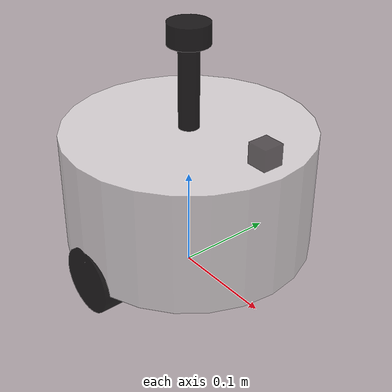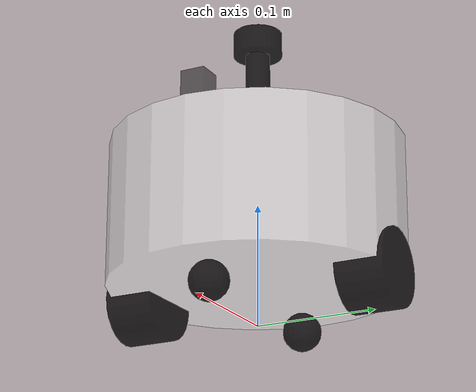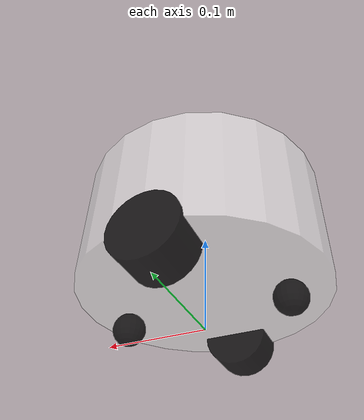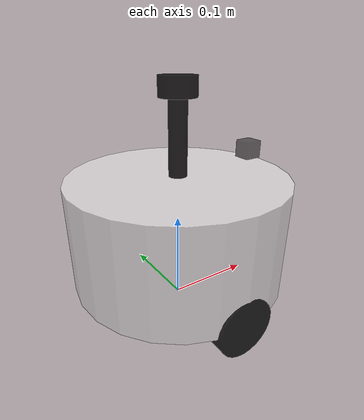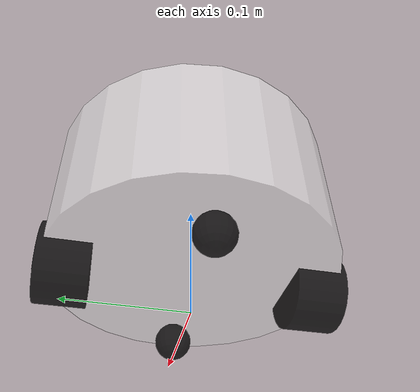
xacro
<?xml version="1.0"?>
<robot xmlns:xacro="http://www.ros.org/wiki/xacro" name="fishbot">
    <xacro:include filename="$(find learning_urdf)/urdf/fishbot/base.urdf.xacro" />
    <!-- 传感器组件 -->
    <xacro:include filename="$(find learning_urdf)/urdf/fishbot/sensor/imu.urdf.xacro" />
    <xacro:include filename="$(find learning_urdf)/urdf/fishbot/sensor/laser.urdf.xacro" />
    <xacro:include filename="$(find learning_urdf)/urdf/fishbot/sensor/camera.urdf.xacro" />
    <!-- 执行器组件 -->
    <xacro:include filename="$(find learning_urdf)/urdf/fishbot/actuator/wheel.urdf.xacro" />
    <xacro:include filename="$(find learning_urdf)/urdf/fishbot/actuator/caster.urdf.xacro" />
    <!-- Gazebo 插件 -->
    <xacro:include filename="$(find learning_urdf)/urdf/fishbot/plugins/gazebo_control_plugin.xacro" />

    <xacro:base_xacro length="0.12" radius="0.1" />
    <!-- 传感器 -->
    <xacro:imu_xacro xyz="0 0 0.02" />
    <xacro:laser_xacro xyz="0 0 0.10" />
    <xacro:camera_xacro xyz="0.10 0 0.075" />
    <!-- 执行器主动轮+从动轮 -->
    <xacro:wheel_xacro wheel_name="left" xyz="0 0.10 -0.06" />
    <xacro:wheel_xacro wheel_name="right" xyz="0 -0.10 -0.06" />
    <xacro:caster_xacro caster_name="front" xyz="0.08 0.0 -0.076" />
    <xacro:caster_xacro caster_name="back" xyz="-0.08 0.0 -0.076" />

    <xacro:gazebo_control_plugin />

</robot>

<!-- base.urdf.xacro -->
<robot xmlns:xacro="http://www.ros.org/wiki/xacro">
<xacro:include filename="$(find learning_urdf)/urdf/fishbot/common_inertia.xacro" />
    <xacro:macro name="base_xacro" params="length radius">
     <link name="base_footprint" />

        <joint name="base_joint" type="fixed">
            <parent link="base_footprint" />
            <child link="base_link" />
            <origin xyz="0.0 0.0 ${length/2.0+0.032-0.001}" rpy="0 0 0" />
        </joint>
        <link name="base_link">
            <visual>
                <origin xyz="0 0 0.0" rpy="0 0 0" />
                <geometry>
                    <cylinder length="${length}" radius="${length}" />
                </geometry>
                <material name="white">
                    <color rgba="1.0 1.0 1.0 0.5"/>
                </material>
            </visual>
            <collision>
                <origin xyz="0 0 0.0" rpy="0 0 0" />
                <geometry>
                    <cylinder length="${length}" radius="${length}" />
                </geometry>
                <material name="white">
                    <color rgba="1.0 1.0 1.0 0.5"/>
                </material>
            </collision>
             <xacro:cylinder_inertia m="1.0" r="${radius}" h="${length}"/>
        </link>
    </xacro:macro>
</robot>

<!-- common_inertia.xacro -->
<robot xmlns:xacro="http://ros.org/wiki/xacro">
    <xacro:macro name="box_inertia" params="m w h d">
        <inertial>
            <mass value="${m}" />
            <inertia ixx="${(m/12) * (h*h + d*d)}" ixy="0.0" ixz="0.0" iyy="${(m/12) * (w*w + d*d)}" iyz="0.0" izz="${(m/12) * (w*w + h*h)}" />
        </inertial>
    </xacro:macro>

    <xacro:macro name="cylinder_inertia" params="m r h">
        <inertial>
            <mass value="${m}" />
            <inertia ixx="${(m/12) * (3*r*r + h*h)}" ixy="0" ixz="0" iyy="${(m/12) * (3*r*r + h*h)}" iyz="0" izz="${(m/2) * (r*r)}" />
        </inertial>
    </xacro:macro>

<!--
      球体惯性宏
      参数：
        m : 质量 [kg]
        r : 半径 [m]
      公式（均质实心球体，质心在球心）：
        ixx = iyy = izz = 2/5 * m * r^2
      注意：球体惯性张量各向同性，因此与坐标系方向无关。
    -->
    <xacro:macro name="sphere_inertia" params="m r">
        <inertial>
            <mass value="${m}" />
            <inertia ixx="${(2/5) * m * (r*r)}" ixy="0.0" ixz="0.0" iyy="${(2/5) * m * (r*r)}" iyz="0.0" izz="${(2/5) * m * (r*r)}" />
        </inertial>
    </xacro:macro>

</robot>

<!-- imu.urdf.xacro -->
<robot xmlns:xacro="http://www.ros.org/wiki/xacro">
<xacro:include filename="$(find learning_urdf)/urdf/fishbot/common_inertia.xacro" />
    <!-- 机器人的身体部分 -->
    <xacro:macro name="imu_xacro" params="xyz">
        <!-- 机器人的IMU部件，惯性测量传感器 -->
        <link name="imu_link">
            <!-- 部件的外观描述 -->
            <visual>
                <!-- 沿着自己几何中心的偏移和旋转 -->
                <origin xyz="0.0 0.0 0.0" rpy="0.0 0.0 0.0"/>
                <!-- 几何形状 -->
                <geometry>
                    <!-- 正方体-->
                    <box size="0.02 0.02 0.02"/>
                </geometry>
                <!-- 材质颜色 -->
                <material name="black">
                    <color rgba="0.0 0.0 0.0 0.5"/>
                </material>
            </visual>
             <collision>
                <origin xyz="0 0 00" rpy="0 0 0" />
                <geometry>
                    <box size="0.02 0.02 0.02" />
                </geometry>
                <material name="black">
                    <color rgba="0 0 0 0.5" />
                </material>
            </collision>
            <xacro:box_inertia m="0.01" w="0.02" d="0.02" h="0.02"/>
        </link>
        <!-- 机器人的关节，用于组合机器人的部件 -->
        <joint name="imu_joint" type="fixed">
            <parent link="base_link"/>
            <child link="imu_link"/>
            <origin xyz="${xyz}" rpy="0.0 0.0 0.0"/>
        </joint>
    </xacro:macro>
</robot>

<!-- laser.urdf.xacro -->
<robot xmlns:xacro="http://www.ros.org/wiki/xacro">
<xacro:include filename="$(find learning_urdf)/urdf/fishbot/common_inertia.xacro" />
    <xacro:macro name="laser_xacro" params="xyz">
        <gazebo reference="laser_cylinder_link">
            <material>Gazebo/Black</material>
        </gazebo>
        <gazebo reference="laser_link">
            <material>Gazebo/Black</material>
        </gazebo>
        <!-- ============雷达支撑杆================ -->
        <link name="laser_cylinder_link">
            <visual>
                <origin xyz="0 0 0" rpy="0 0 0" />
                <geometry>
                    <cylinder length="0.10" radius="0.01" />
                </geometry>
                <material name="black">
                    <color rgba="0.0 0.0 0.0 0.8" />
                </material>
            </visual>
             <collision>
                <origin xyz="0 0 0" rpy="0 0 0" />
                <geometry>
                    <cylinder length="0.10" radius="0.01" />
                </geometry>
                <material name="black">
                    <color rgba="0.0 0.0 0.0 0.8" />
                </material>
            </collision>
            <xacro:cylinder_inertia m="0.01" r="0.01" h="0.10" />
        </link>

        <joint name="laser_cylinder_joint" type="fixed">
            <parent link="base_link" />
            <child link="laser_cylinder_link" />
            <origin xyz="${xyz}" />
        </joint>
        <!-- ============雷达================ -->
        <link name="laser_link">
            <visual>
                <origin xyz="0 0 0" rpy="0 0 0" />
                <geometry>
                    <cylinder length="0.02" radius="0.02" />
                </geometry>
                <material name="black">
                    <color rgba="0.0 0.0 0.0 0.8" />
                </material>
            </visual>
            <collision>
                <origin xyz="0 0 0" rpy="0 0 0" />
                <geometry>
                    <cylinder length="0.02" radius="0.02" />
                </geometry>
                <material name="black">
                    <color rgba="0.0 0.0 0.0 0.8" />
                </material>
            </collision>
            <xacro:cylinder_inertia m="0.03" r="0.02" h="0.02" />
        </link>

        <joint name="laser_joint" type="fixed">
            <parent link="laser_cylinder_link" />
            <child link="laser_link" />
            <origin xyz="0 0 0.05" />
        </joint>
    </xacro:macro>
</robot>

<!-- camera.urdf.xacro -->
<robot xmlns:xacro="http://www.ros.org/wiki/xacro">
<xacro:include filename="$(find learning_urdf)/urdf/fishbot/common_inertia.xacro" />
    <xacro:macro name="camera_xacro" params="xyz">
        <!-- ============相机模块================ -->
        <link name="camera_link">
            <visual>
                <origin xyz="0 0 0.0" rpy="0 0 0" />
                <geometry>
                    <box size="0.02 0.02 0.02" />
                </geometry>
                <material name="black">
                    <color rgba="0.0 0.0 0.0 0.5"/>
                </material>
            </visual>
            <collision>
                <origin xyz="0 0 0.0" rpy="0 0 0" />
                <geometry>
                    <box size="0.02 0.10 0.02" />
                </geometry>
                <material name="black">
                    <color rgba="0.0 0.0 0.0 0.5"/>
                </material>
            </collision>
            <xacro:box_inertia m="0.01" w="0.02" h="0.10" d="0.02" />
        </link>
        <joint name="camera_joint" type="fixed">
            <parent link="base_link" />
            <child link="camera_link" />
            <origin xyz="${xyz}" />
        </joint>
    </xacro:macro>

</robot>

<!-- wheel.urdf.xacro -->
<robot xmlns:xacro="http://www.ros.org/wiki/xacro">
<xacro:include filename="$(find learning_urdf)/urdf/fishbot/common_inertia.xacro" />
    <xacro:macro name="wheel_xacro" params="wheel_name xyz">
        <link name="${wheel_name}_wheel_link">
            <visual>
                <origin xyz="0 0 0" rpy="1.57079 0 0" />
                <geometry>
                    <cylinder length="0.04" radius="0.032" />
                </geometry>
                <material name="black">
                    <color rgba="0.0 0.0 0.0 0.8"/>
                </material>
            </visual>
            <collision>
                <origin xyz="0 0 0" rpy="1.57079 0 0" />
                <geometry>
                    <cylinder length="0.04" radius="0.032" />
                </geometry>
                <material name="black">
                    <color rgba="0.0 0.0 0.0 0.8"/>
                </material>
            </collision>
            <xacro:cylinder_inertia m="0.1" h="0.04" r="0.032"/>
        </link>
        <gazebo reference="${wheel_name}_wheel_link">
            <mu1 value="15.0" />
            <mu2 value="15.0" />
            <kp value="1000000000.0" />
            <kd value="1.0" />
        </gazebo>

        <joint name="${wheel_name}_wheel_joint" type="continuous">
            <parent link="base_link" />
            <child link="${wheel_name}_wheel_link" />
            <origin xyz="${xyz}" />
            <axis xyz="0 1 0" />
        </joint>
    </xacro:macro>
</robot>

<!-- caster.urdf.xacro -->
<robot xmlns:xacro="http://www.ros.org/wiki/xacro">
<xacro:include filename="$(find learning_urdf)/urdf/fishbot/common_inertia.xacro" />
    <xacro:macro name="caster_xacro" params="caster_name xyz">
        <link name="${caster_name}_caster_link">
            <visual>
                <origin xyz="0 0 0" rpy="0 0 0" />
                <geometry>
                    <sphere radius="0.016" />
                </geometry>
                <material name="black">
                    <color rgba="0.0 0.0 0.0 0.8"/>
                </material>
            </visual>
            <collision>
                <origin xyz="0 0 0" rpy="0 0 0" />
                <geometry>
                    <sphere radius="0.016" />
                </geometry>
                <material name="black">
                    <color rgba="0.0 0.0 0.0 0.8"/>
                </material>
            </collision>
            <xacro:sphere_inertia m="0.01" r="0.016" />
        </link>
        <gazebo reference="${caster_name}_caster_link">
            <mu1 value="0.0" />
            <mu2 value="0.0" />
            <kp value="1000000000.0" />
            <kd value="1.0" />
        </gazebo>

        <joint name="${caster_name}_caster_joint" type="fixed">
            <parent link="base_link" />
            <child link="${caster_name}_caster_link" />
            <origin xyz="${xyz}" />
            <axis xyz="0 0 0" />
        </joint>
    </xacro:macro>
</robot>
